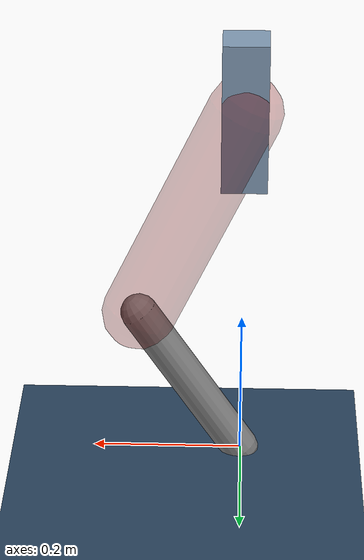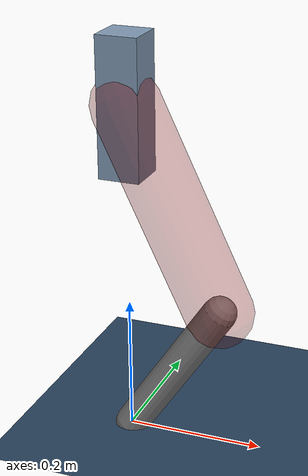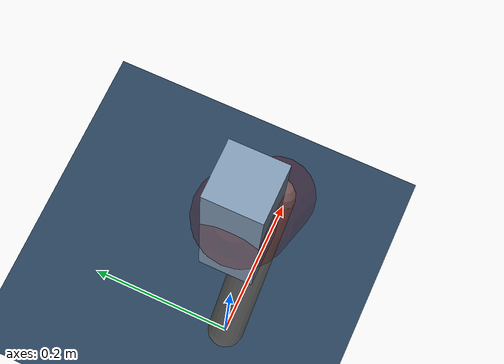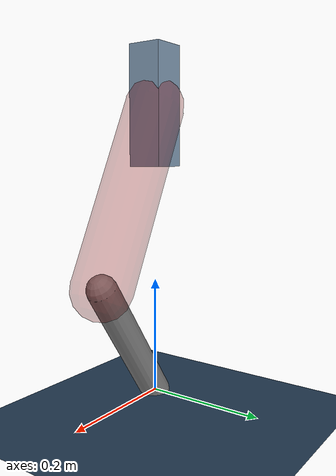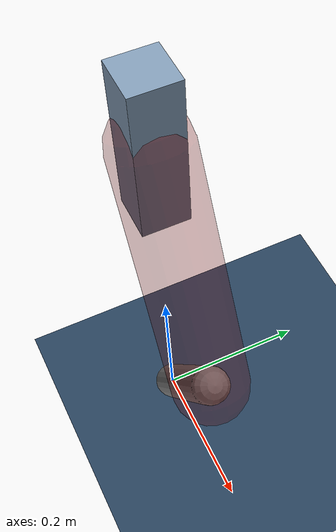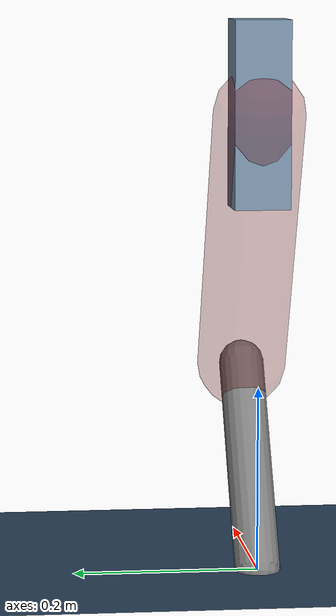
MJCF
<mujoco model="Hopper2D">
	<compiler inertiafromgeom="true" angle="radian" />
	<option timestep="0.001" integrator="implicit" cone="elliptic" solver="Newton" tolerance="1e-10" />

	<default>
		<geom contype="1" conaffinity="1" condim="3" friction="2 0.005 0.0001" solref="0.005 1" />
		<joint limited="true" damping="0.1" />
	</default>

	<asset>
		<texture name="skybox" type="skybox" builtin="gradient" rgb1=".4 .6 .8" rgb2="0 0 0" width="800" height="800" />
		<texture name="grid" type="2d" builtin="checker" rgb1=".1 .2 .3" rgb2=".2 .3 .4" width="300" height="300" mark="edge" markrgb=".2 .3 .4" />
		<material name="ground" texture="grid" texrepeat="1 1" texuniform="true" reflectance="0.1" />
		<material name="leg" rgba="0.5 0.6 0.7 1" />
	</asset>

	<worldbody>

		<geom name="floor" type="plane" size="5 5 0.25" material="ground" />

		<light directional="false" diffuse="0.8 0.8 0.8" specular="0.3 0.3 0.3" pos="0 0 2" dir="0 0 -1" />
		<light mode="targetbodycom" target="base" directional="false" diffuse="0.8 0.8 0.8" specular="0.3 0.3 0.3" pos="0 0 2" dir="0 0 -1" />

		<camera name="fixed" pos="0 -2 1" xyaxes="1 0 0 0 0 1" />
		<camera name="tracking" mode="trackcom" pos="0 -3 1" />

		<body name="root" pos="0 0 0.4957134306814408">
			<joint name="slide_x" type="slide" axis="1 0 0" range="-100 100" />
			<joint name="slide_z" type="slide" axis="0 0 1" range="0 10" />

			<body name="base" pos="0 0 0">
				<geom name="torso" type="box" size="0.03 0.03 0.1" mass="3.7270000000000003" material="leg" />

				<body name="link1" pos="0 0 0" euler="0 1.126588488536751 0">
					<joint type="hinge" axis="0 -1 0" pos="0 0 0" name="hinge1" limited="true" range="-3.14 3.14" stiffness="0" damping="0.1" />
					<geom name="thigh" type="capsule" fromto="0 0 0 0.32035540073315977 0 0" size="0.05" rgba="0.5 0 0 0.3" mass="1.0441951220528474" />

					<body name="link2" pos="0.32035540073315977 0 0" euler="0 1.0323390373193726 0">
						<joint type="hinge" axis="0 -1 0" pos="0 0 0" name="hinge2" limited="true" range="-3.14 3.14" stiffness="0" damping="0.1" />
						<geom name="shank" type="capsule" fromto="0 0 0 0.24814098952971575 0 0" size="0.025" mass="0.4410127916237726" />

					</body>
				</body>
			</body>
		</body>
	</worldbody>

	<actuator>
		<motor name="torque1" joint="hinge1" ctrlrange="-165.2821314251101 165.2821314251101" ctrllimited="true" gear="1" />
		<motor name="torque2" joint="hinge2" ctrlrange="-151.170367532381 151.170367532381" ctrllimited="true" gear="1" />
	</actuator>
</mujoco>
